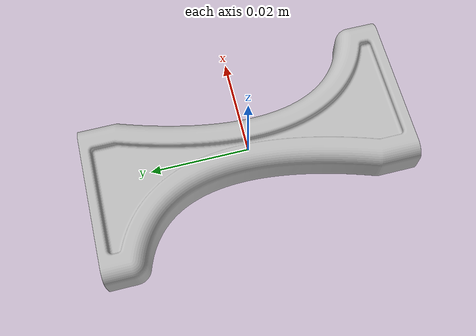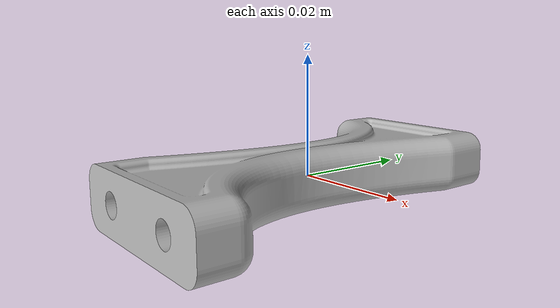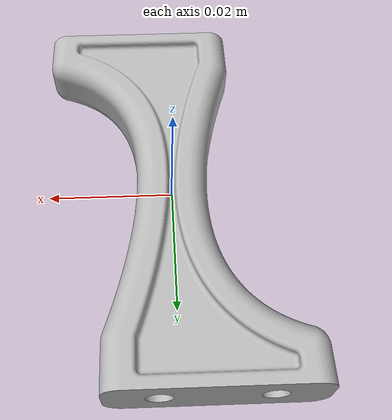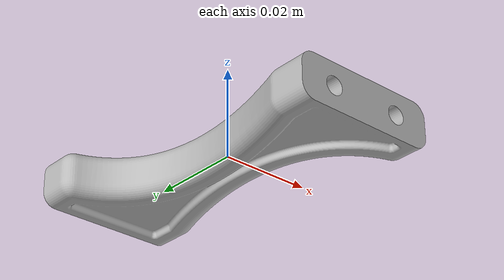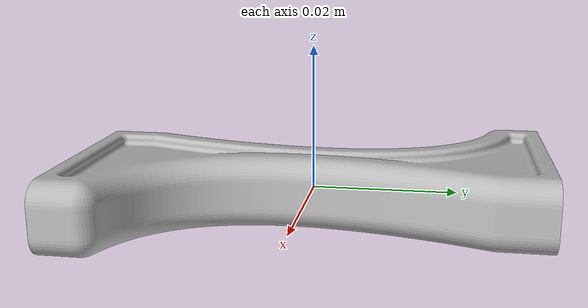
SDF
<?xml version="1.0" ?>
<sdf version="1.6">
  <model name="16)Vertical cross bar.001">
    <static>true</static>
    <link name="link">
      <collision name="collision">
        <geometry>
          <mesh>
            <scale>0.001 0.001 0.001</scale>
            <uri>model://16)Vertical cross bar.001/16)Vertical cross bar.001.stl</uri>
          </mesh>
        </geometry>
      </collision>
      <visual name="visual">
        <geometry>
          <mesh>
            <scale>0.001 0.001 0.001</scale>
            <uri>model://16)Vertical cross bar.001/16)Vertical cross bar.001.dae</uri>
          </mesh>
        </geometry>
      </visual>
    </link>
  </model>
</sdf>
